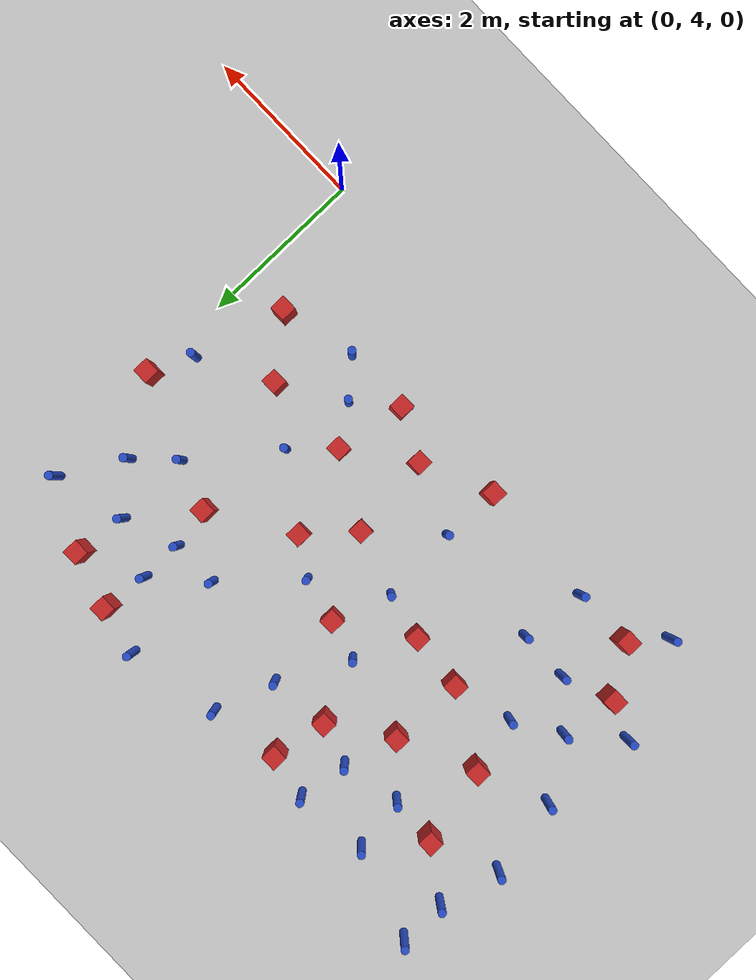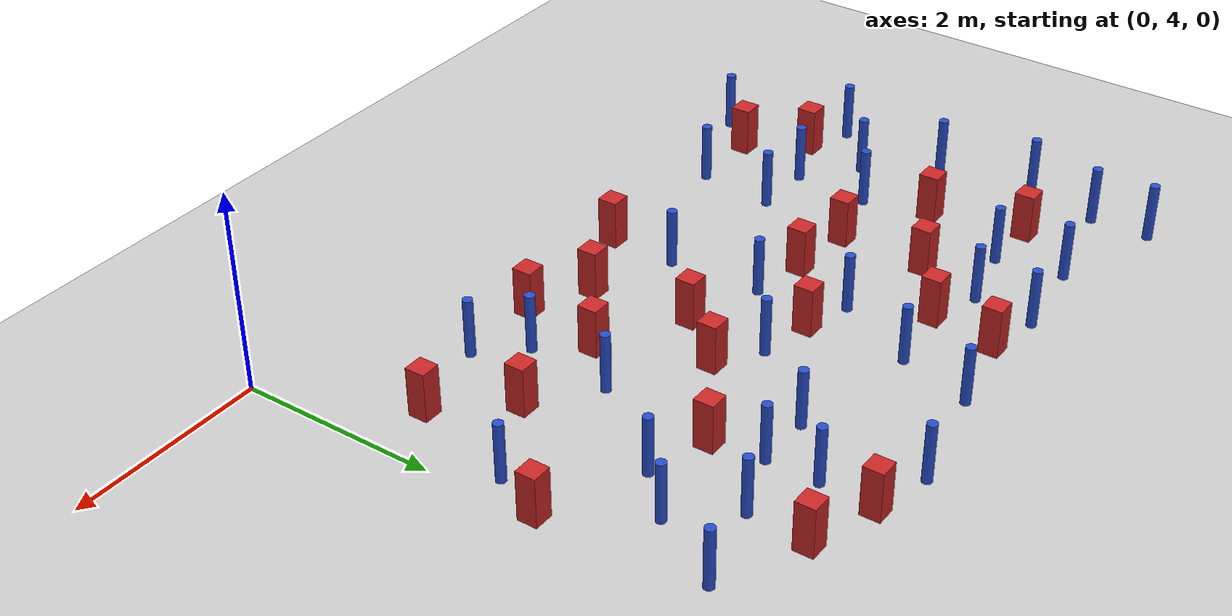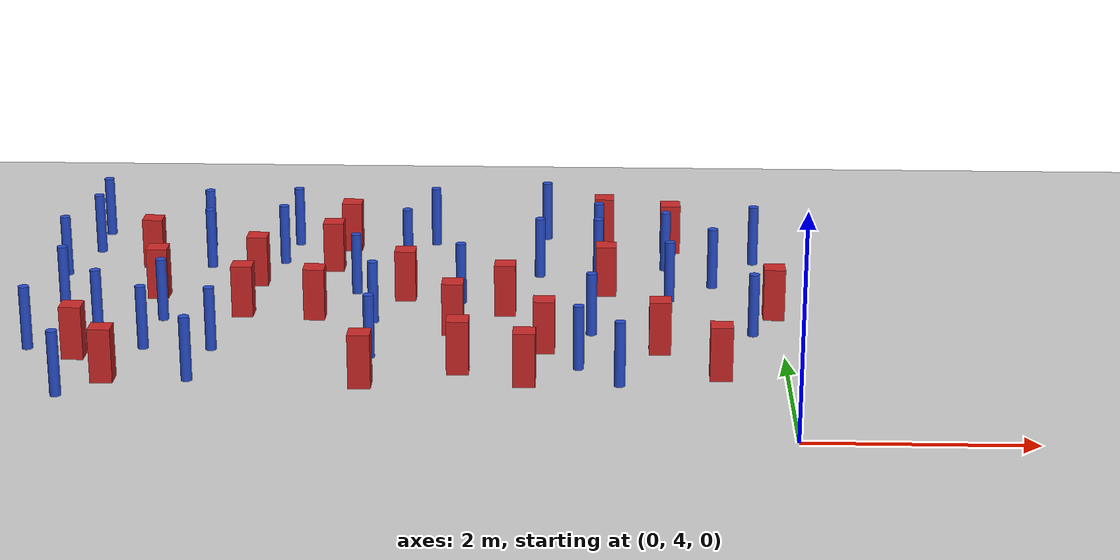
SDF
<sdf version="1.6">
 <world name="default">
  <model name="ground_plane">
   <static>1</static>
   <link name="link">
    <collision name="collision">
     <geometry><plane><normal>0 0 1</normal><size>100 100</size></plane></geometry>
     <surface><friction><ode><mu>100</mu><mu2>50</mu2></ode></friction></surface>
    </collision>
    <visual name="visual">
     <cast_shadows>0</cast_shadows>
     <geometry><plane><normal>0 0 1</normal><size>100 100</size></plane></geometry>
     <material>
      <ambient>1.0 1.0 1.0 1.0</ambient>
      <diffuse>0.8 0.8 0.8 1.0</diffuse>
      <specular>0.01 0.01 0.01 1.000000</specular>
     </material>
    </visual>
   </link>
  </model>
  <model name="square_post_obstacle5">
   <static>true</static>
   <pose>-1.62502940197 7.73699112247 8.22691968438e-08 7.2212513382e-06 -7.54495500217e-07 2.29674213826e-05</pose>
   <link name="link">
    <pose>0 0 0.25 0 -0 0</pose>
    <inertial>
     <mass>100</mass>
     <inertia>
      <ixx>0.166667</ixx>
      <ixy>0</ixy>
      <ixz>0</ixz>
      <iyy>0.166667</iyy>
      <iyz>0</iyz>
      <izz>0.166667</izz>
     </inertia>
    </inertial>
    <collision name="collision"><geometry><box><size>.2 .2 .5</size></box></geometry></collision>
    <visual name="visual">
     <geometry><box><size>.2 .2 .5</size></box></geometry>
     <material>
      <script><name>Gazebo/Red</name><uri>file://media/materials/scripts/gazebo.material</uri></script>
     </material>
    </visual>
   </link>
  </model>
  <model name="pole_obstacle12">
   <static>true</static>
   <pose>-1.70624863904 8.2460111701 2.88873142074e-08 -9.90536690474e-09 4.60219948974e-07 -1.2096599497e-07</pose>
   <link name="link">
    <pose>0 0 0.3 0 -0 0</pose>
    <inertial>
     <mass>1</mass>
     <inertia><ixx>0.145833</ixx><ixy>0</ixy><ixz>0</ixz><iyy>0.145833</iyy><iyz>0</iyz><izz>0.125</izz></inertia>
    </inertial>
    <collision name="collision">
     <geometry><cylinder><radius>0.05</radius><length>.6</length></cylinder></geometry>
    </collision>
    <visual name="visual">
     <geometry><cylinder><radius>0.05</radius><length>.6</length></cylinder></geometry>
     <material>
      <script><name>Gazebo/Blue</name><uri>file://media/materials/scripts/gazebo.material</uri></script>
     </material>
    </visual>
   </link>
  </model>
  <model name="square_post_obstacle24">
   <static>true</static>
   <pose>-5.95785105584 7.53222903011 8.22691968438e-08 7.2212513382e-06 -7.54495500217e-07 2.29674213826e-05</pose>
   <link name="link">
    <pose>0 0 0.25 0 -0 0</pose>
    <inertial>
     <mass>100</mass>
     <inertia>
      <ixx>0.166667</ixx>
      <ixy>0</ixy>
      <ixz>0</ixz>
      <iyy>0.166667</iyy>
      <iyz>0</iyz>
      <izz>0.166667</izz>
     </inertia>
    </inertial>
    <collision name="collision"><geometry><box><size>.2 .2 .5</size></box></geometry></collision>
    <visual name="visual">
     <geometry><box><size>.2 .2 .5</size></box></geometry>
     <material>
      <script><name>Gazebo/Red</name><uri>file://media/materials/scripts/gazebo.material</uri></script>
     </material>
    </visual>
   </link>
  </model>
  <model name="pole_obstacle30">
   <static>true</static>
   <pose>-3.81424817512 6.84928065163 2.88873142074e-08 -9.90536692062e-09 4.60219948937e-07 -1.20965994985e-07</pose>
   <link name="link">
    <pose>0 0 0.3 0 -0 0</pose>
    <inertial>
     <mass>1</mass>
     <inertia><ixx>0.145833</ixx><ixy>0</ixy><ixz>0</ixz><iyy>0.145833</iyy><iyz>0</iyz><izz>0.125</izz></inertia>
    </inertial>
    <collision name="collision">
     <geometry><cylinder><radius>0.05</radius><length>.6</length></cylinder></geometry>
    </collision>
    <visual name="visual">
     <geometry><cylinder><radius>0.05</radius><length>.6</length></cylinder></geometry>
     <material>
      <script><name>Gazebo/Blue</name><uri>file://media/materials/scripts/gazebo.material</uri></script>
     </material>
    </visual>
   </link>
  </model>
  <model name="pole_obstacle34">
   <static>true</static>
   <pose>-3.7639796775 5.90260880079 2.88873142074e-08 -9.90536692062e-09 4.60219948937e-07 -1.20965994985e-07</pose>
   <link name="link">
    <pose>0 0 0.3 0 -0 0</pose>
    <inertial>
     <mass>1</mass>
     <inertia><ixx>0.145833</ixx><ixy>0</ixy><ixz>0</ixz><iyy>0.145833</iyy><iyz>0</iyz><izz>0.125</izz></inertia>
    </inertial>
    <collision name="collision">
     <geometry><cylinder><radius>0.05</radius><length>.6</length></cylinder></geometry>
    </collision>
    <visual name="visual">
     <geometry><cylinder><radius>0.05</radius><length>.6</length></cylinder></geometry>
     <material>
      <script><name>Gazebo/Blue</name><uri>file://media/materials/scripts/gazebo.material</uri></script>
     </material>
    </visual>
   </link>
  </model>
  <model name="pole_obstacle36">
   <static>true</static>
   <pose>-4.86426461495 8.59429978646 2.88873142074e-08 -9.9053668967e-09 4.60219948993e-07 -1.20965994957e-07</pose>
   <link name="link">
    <pose>0 0 0.3 0 -0 0</pose>
    <inertial>
     <mass>1</mass>
     <inertia><ixx>0.145833</ixx><ixy>0</ixy><ixz>0</ixz><iyy>0.145833</iyy><iyz>0</iyz><izz>0.125</izz></inertia>
    </inertial>
    <collision name="collision">
     <geometry><cylinder><radius>0.05</radius><length>.6</length></cylinder></geometry>
    </collision>
    <visual name="visual">
     <geometry><cylinder><radius>0.05</radius><length>.6</length></cylinder></geometry>
     <material>
      <script><name>Gazebo/Blue</name><uri>file://media/materials/scripts/gazebo.material</uri></script>
     </material>
    </visual>
   </link>
  </model>
  <model name="pole_obstacle38">
   <static>true</static>
   <pose>-6.40832418415 4.86727818669 2.88873142074e-08 -9.90536690842e-09 4.60219948965e-07 -1.20965994976e-07</pose>
   <link name="link">
    <pose>0 0 0.3 0 -0 0</pose>
    <inertial>
     <mass>1</mass>
     <inertia><ixx>0.145833</ixx><ixy>0</ixy><ixz>0</ixz><iyy>0.145833</iyy><iyz>0</iyz><izz>0.125</izz></inertia>
    </inertial>
    <collision name="collision">
     <geometry><cylinder><radius>0.05</radius><length>.6</length></cylinder></geometry>
    </collision>
    <visual name="visual">
     <geometry><cylinder><radius>0.05</radius><length>.6</length></cylinder></geometry>
     <material>
      <script><name>Gazebo/Blue</name><uri>file://media/materials/scripts/gazebo.material</uri></script>
     </material>
    </visual>
   </link>
  </model>
  <model name="pole_obstacle39">
   <static>true</static>
   <pose>-1.75640897377 6.57186250032 2.88873142074e-08 -9.90536689852e-09 4.60219948989e-07 -1.2096599496e-07</pose>
   <link name="link">
    <pose>0 0 0.3 0 -0 0</pose>
    <inertial>
     <mass>1</mass>
     <inertia><ixx>0.145833</ixx><ixy>0</ixy><ixz>0</ixz><iyy>0.145833</iyy><iyz>0</iyz><izz>0.125</izz></inertia>
    </inertial>
    <collision name="collision">
     <geometry><cylinder><radius>0.05</radius><length>.6</length></cylinder></geometry>
    </collision>
    <visual name="visual">
     <geometry><cylinder><radius>0.05</radius><length>.6</length></cylinder></geometry>
     <material>
      <script><name>Gazebo/Blue</name><uri>file://media/materials/scripts/gazebo.material</uri></script>
     </material>
    </visual>
   </link>
  </model>
  <model name="pole_obstacle43">
   <static>true</static>
   <pose>-5.32611838451 5.27101270883 2.88873142074e-08 -9.90536690842e-09 4.60219948965e-07 -1.20965994976e-07</pose>
   <link name="link">
    <pose>0 0 0.3 0 -0 0</pose>
    <inertial>
     <mass>1</mass>
     <inertia><ixx>0.145833</ixx><ixy>0</ixy><ixz>0</ixz><iyy>0.145833</iyy><iyz>0</iyz><izz>0.125</izz></inertia>
    </inertial>
    <collision name="collision">
     <geometry><cylinder><radius>0.05</radius><length>.6</length></cylinder></geometry>
    </collision>
    <visual name="visual">
     <geometry><cylinder><radius>0.05</radius><length>.6</length></cylinder></geometry>
     <material>
      <script><name>Gazebo/Blue</name><uri>file://media/materials/scripts/gazebo.material</uri></script>
     </material>
    </visual>
   </link>
  </model>
  <model name="square_post_obstacle47">
   <static>true</static>
   <pose>-1.12757412419 6.13249128294 8.22691968438e-08 7.2212513382e-06 -7.54495500217e-07 2.29674213826e-05</pose>
   <link name="link">
    <pose>0 0 0.25 0 -0 0</pose>
    <inertial>
     <mass>100</mass>
     <inertia>
      <ixx>0.166667</ixx>
      <ixy>0</ixy>
      <ixz>0</ixz>
      <iyy>0.166667</iyy>
      <iyz>0</iyz>
      <izz>0.166667</izz>
     </inertia>
    </inertial>
    <collision name="collision"><geometry><box><size>.2 .2 .5</size></box></geometry></collision>
    <visual name="visual">
     <geometry><box><size>.2 .2 .5</size></box></geometry>
     <material>
      <script><name>Gazebo/Red</name><uri>file://media/materials/scripts/gazebo.material</uri></script>
     </material>
    </visual>
   </link>
  </model>
  <model name="pole_obstacle49">
   <static>true</static>
   <pose>-2.28251560408 8.24530616527 2.88873142074e-08 -9.90536692318e-09 4.6021994893e-07 -1.20965994988e-07</pose>
   <link name="link">
    <pose>0 0 0.3 0 -0 0</pose>
    <inertial>
     <mass>1</mass>
     <inertia><ixx>0.145833</ixx><ixy>0</ixy><ixz>0</ixz><iyy>0.145833</iyy><iyz>0</iyz><izz>0.125</izz></inertia>
    </inertial>
    <collision name="collision">
     <geometry><cylinder><radius>0.05</radius><length>.6</length></cylinder></geometry>
    </collision>
    <visual name="visual">
     <geometry><cylinder><radius>0.05</radius><length>.6</length></cylinder></geometry>
     <material>
      <script><name>Gazebo/Blue</name><uri>file://media/materials/scripts/gazebo.material</uri></script>
     </material>
    </visual>
   </link>
  </model>
  <model name="square_post_obstacle49">
   <static>true</static>
   <pose>-2.93758978744 5.57029905862 8.22691968438e-08 7.2212513382e-06 -7.54495500217e-07 2.29674213826e-05</pose>
   <link name="link">
    <pose>0 0 0.25 0 -0 0</pose>
    <inertial>
     <mass>100</mass>
     <inertia>
      <ixx>0.166667</ixx>
      <ixy>0</ixy>
      <ixz>0</ixz>
      <iyy>0.166667</iyy>
      <iyz>0</iyz>
      <izz>0.166667</izz>
     </inertia>
    </inertial>
    <collision name="collision"><geometry><box><size>.2 .2 .5</size></box></geometry></collision>
    <visual name="visual">
     <geometry><box><size>.2 .2 .5</size></box></geometry>
     <material>
      <script><name>Gazebo/Red</name><uri>file://media/materials/scripts/gazebo.material</uri></script>
     </material>
    </visual>
   </link>
  </model>
  <model name="square_post_obstacle52">
   <static>true</static>
   <pose>-5.06748183629 7.03526219331 8.22691968438e-08 7.22125133819e-06 -7.54495500217e-07 2.29674213826e-05</pose>
   <link name="link">
    <pose>0 0 0.25 0 -0 0</pose>
    <inertial>
     <mass>100</mass>
     <inertia>
      <ixx>0.166667</ixx>
      <ixy>0</ixy>
      <ixz>0</ixz>
      <iyy>0.166667</iyy>
      <iyz>0</iyz>
      <izz>0.166667</izz>
     </inertia>
    </inertial>
    <collision name="collision"><geometry><box><size>.2 .2 .5</size></box></geometry></collision>
    <visual name="visual">
     <geometry><box><size>.2 .2 .5</size></box></geometry>
     <material>
      <script><name>Gazebo/Red</name><uri>file://media/materials/scripts/gazebo.material</uri></script>
     </material>
    </visual>
   </link>
  </model>
  <model name="square_post_obstacle55">
   <static>true</static>
   <pose>-4.34392898501 8.41638645236 8.22691968438e-08 7.22125133819e-06 -7.54495500217e-07 2.29674213826e-05</pose>
   <link name="link">
    <pose>0 0 0.25 0 -0 0</pose>
    <inertial>
     <mass>100</mass>
     <inertia>
      <ixx>0.166667</ixx>
      <ixy>0</ixy>
      <ixz>0</ixz>
      <iyy>0.166667</iyy>
      <iyz>0</iyz>
      <izz>0.166667</izz>
     </inertia>
    </inertial>
    <collision name="collision"><geometry><box><size>.2 .2 .5</size></box></geometry></collision>
    <visual name="visual">
     <geometry><box><size>.2 .2 .5</size></box></geometry>
     <material>
      <script><name>Gazebo/Red</name><uri>file://media/materials/scripts/gazebo.material</uri></script>
     </material>
    </visual>
   </link>
  </model>
  <model name="pole_obstacle57">
   <static>true</static>
   <pose>-1.49419448965 5.25854520074 2.88873142074e-08 -9.90536689852e-09 4.60219948989e-07 -1.2096599496e-07</pose>
   <link name="link">
    <pose>0 0 0.3 0 -0 0</pose>
    <inertial>
     <mass>1</mass>
     <inertia><ixx>0.145833</ixx><ixy>0</ixy><ixz>0</ixz><iyy>0.145833</iyy><iyz>0</iyz><izz>0.125</izz></inertia>
    </inertial>
    <collision name="collision">
     <geometry><cylinder><radius>0.05</radius><length>.6</length></cylinder></geometry>
    </collision>
    <visual name="visual">
     <geometry><cylinder><radius>0.05</radius><length>.6</length></cylinder></geometry>
     <material>
      <script><name>Gazebo/Blue</name><uri>file://media/materials/scripts/gazebo.material</uri></script>
     </material>
    </visual>
   </link>
  </model>
  <model name="square_post_obstacle69">
   <static>true</static>
   <pose>-2.18557994144 6.12579598788 8.22691968438e-08 7.2212513382e-06 -7.54495500217e-07 2.29674213826e-05</pose>
   <link name="link">
    <pose>0 0 0.25 0 -0 0</pose>
    <inertial>
     <mass>100</mass>
     <inertia>
      <ixx>0.166667</ixx>
      <ixy>0</ixy>
      <ixz>0</ixz>
      <iyy>0.166667</iyy>
      <iyz>0</iyz>
      <izz>0.166667</izz>
     </inertia>
    </inertial>
    <collision name="collision"><geometry><box><size>.2 .2 .5</size></box></geometry></collision>
    <visual name="visual">
     <geometry><box><size>.2 .2 .5</size></box></geometry>
     <material>
      <script><name>Gazebo/Red</name><uri>file://media/materials/scripts/gazebo.material</uri></script>
     </material>
    </visual>
   </link>
  </model>
  <model name="pole_obstacle67">
   <static>true</static>
   <pose>-6.79045576454 8.90069616436 2.88873142074e-08 -9.9053668967e-09 4.60219948993e-07 -1.20965994957e-07</pose>
   <link name="link">
    <pose>0 0 0.3 0 -0 0</pose>
    <inertial>
     <mass>1</mass>
     <inertia><ixx>0.145833</ixx><ixy>0</ixy><ixz>0</ixz><iyy>0.145833</iyy><iyz>0</iyz><izz>0.125</izz></inertia>
    </inertial>
    <collision name="collision">
     <geometry><cylinder><radius>0.05</radius><length>.6</length></cylinder></geometry>
    </collision>
    <visual name="visual">
     <geometry><cylinder><radius>0.05</radius><length>.6</length></cylinder></geometry>
     <material>
      <script><name>Gazebo/Blue</name><uri>file://media/materials/scripts/gazebo.material</uri></script>
     </material>
    </visual>
   </link>
  </model>
  <model name="square_post_obstacle74">
   <static>true</static>
   <pose>-0.979781735508 9.10467260252 8.22691968438e-08 7.22125133819e-06 -7.54495500217e-07 2.29674213826e-05</pose>
   <link name="link">
    <pose>0 0 0.25 0 -0 0</pose>
    <inertial>
     <mass>100</mass>
     <inertia>
      <ixx>0.166667</ixx>
      <ixy>0</ixy>
      <ixz>0</ixz>
      <iyy>0.166667</iyy>
      <iyz>0</iyz>
      <izz>0.166667</izz>
     </inertia>
    </inertial>
    <collision name="collision"><geometry><box><size>.2 .2 .5</size></box></geometry></collision>
    <visual name="visual">
     <geometry><box><size>.2 .2 .5</size></box></geometry>
     <material>
      <script><name>Gazebo/Red</name><uri>file://media/materials/scripts/gazebo.material</uri></script>
     </material>
    </visual>
   </link>
  </model>
  <model name="pole_obstacle69">
   <static>true</static>
   <pose>-6.91571051013 6.02828056579 2.88873142074e-08 -9.90536690842e-09 4.60219948965e-07 -1.20965994976e-07</pose>
   <link name="link">
    <pose>0 0 0.3 0 -0 0</pose>
    <inertial>
     <mass>1</mass>
     <inertia><ixx>0.145833</ixx><ixy>0</ixy><ixz>0</ixz><iyy>0.145833</iyy><iyz>0</iyz><izz>0.125</izz></inertia>
    </inertial>
    <collision name="collision">
     <geometry><cylinder><radius>0.05</radius><length>.6</length></cylinder></geometry>
    </collision>
    <visual name="visual">
     <geometry><cylinder><radius>0.05</radius><length>.6</length></cylinder></geometry>
     <material>
      <script><name>Gazebo/Blue</name><uri>file://media/materials/scripts/gazebo.material</uri></script>
     </material>
    </visual>
   </link>
  </model>
  <model name="pole_obstacle70">
   <static>true</static>
   <pose>-0.155486620247 8.70423718212 2.88873142074e-08 -9.90536690775e-09 4.60219948967e-07 -1.20965994977e-07</pose>
   <link name="link">
    <pose>0 0 0.3 0 -0 0</pose>
    <inertial>
     <mass>1</mass>
     <inertia><ixx>0.145833</ixx><ixy>0</ixy><ixz>0</ixz><iyy>0.145833</iyy><iyz>0</iyz><izz>0.125</izz></inertia>
    </inertial>
    <collision name="collision">
     <geometry><cylinder><radius>0.05</radius><length>.6</length></cylinder></geometry>
    </collision>
    <visual name="visual">
     <geometry><cylinder><radius>0.05</radius><length>.6</length></cylinder></geometry>
     <material>
      <script><name>Gazebo/Blue</name><uri>file://media/materials/scripts/gazebo.material</uri></script>
     </material>
    </visual>
   </link>
  </model>
  <model name="pole_obstacle73">
   <static>true</static>
   <pose>-5.80547889419 6.85439992451 2.88873142074e-08 -9.90536690842e-09 4.60219948965e-07 -1.20965994976e-07</pose>
   <link name="link">
    <pose>0 0 0.3 0 -0 0</pose>
    <inertial>
     <mass>1</mass>
     <inertia><ixx>0.145833</ixx><ixy>0</ixy><ixz>0</ixz><iyy>0.145833</iyy><iyz>0</iyz><izz>0.125</izz></inertia>
    </inertial>
    <collision name="collision">
     <geometry><cylinder><radius>0.05</radius><length>.6</length></cylinder></geometry>
    </collision>
    <visual name="visual">
     <geometry><cylinder><radius>0.05</radius><length>.6</length></cylinder></geometry>
     <material>
      <script><name>Gazebo/Blue</name><uri>file://media/materials/scripts/gazebo.material</uri></script>
     </material>
    </visual>
   </link>
  </model>
  <model name="pole_obstacle83">
   <static>true</static>
   <pose>-6.35881131867 6.51752627627 2.88873142074e-08 -9.90536690842e-09 4.60219948965e-07 -1.20965994976e-07</pose>
   <link name="link">
    <pose>0 0 0.3 0 -0 0</pose>
    <inertial>
     <mass>1</mass>
     <inertia><ixx>0.145833</ixx><ixy>0</ixy><ixz>0</ixz><iyy>0.145833</iyy><iyz>0</iyz><izz>0.125</izz></inertia>
    </inertial>
    <collision name="collision">
     <geometry><cylinder><radius>0.05</radius><length>.6</length></cylinder></geometry>
    </collision>
    <visual name="visual">
     <geometry><cylinder><radius>0.05</radius><length>.6</length></cylinder></geometry>
     <material>
      <script><name>Gazebo/Blue</name><uri>file://media/materials/scripts/gazebo.material</uri></script>
     </material>
    </visual>
   </link>
  </model>
  <model name="pole_obstacle84">
   <static>true</static>
   <pose>-5.58310676283 8.44179848741 2.88873142074e-08 -9.9053668967e-09 4.60219948993e-07 -1.20965994957e-07</pose>
   <link name="link">
    <pose>0 0 0.3 0 -0 0</pose>
    <inertial>
     <mass>1</mass>
     <inertia><ixx>0.145833</ixx><ixy>0</ixy><ixz>0</ixz><iyy>0.145833</iyy><iyz>0</iyz><izz>0.125</izz></inertia>
    </inertial>
    <collision name="collision">
     <geometry><cylinder><radius>0.05</radius><length>.6</length></cylinder></geometry>
    </collision>
    <visual name="visual">
     <geometry><cylinder><radius>0.05</radius><length>.6</length></cylinder></geometry>
     <material>
      <script><name>Gazebo/Blue</name><uri>file://media/materials/scripts/gazebo.material</uri></script>
     </material>
    </visual>
   </link>
  </model>
  <model name="pole_obstacle86">
   <static>true</static>
   <pose>-5.23018238261 6.06128517286 2.88873142074e-08 -9.90536690842e-09 4.60219948965e-07 -1.20965994976e-07</pose>
   <link name="link">
    <pose>0 0 0.3 0 -0 0</pose>
    <inertial>
     <mass>1</mass>
     <inertia><ixx>0.145833</ixx><ixy>0</ixy><ixz>0</ixz><iyy>0.145833</iyy><iyz>0</iyz><izz>0.125</izz></inertia>
    </inertial>
    <collision name="collision">
     <geometry><cylinder><radius>0.05</radius><length>.6</length></cylinder></geometry>
    </collision>
    <visual name="visual">
     <geometry><cylinder><radius>0.05</radius><length>.6</length></cylinder></geometry>
     <material>
      <script><name>Gazebo/Blue</name><uri>file://media/materials/scripts/gazebo.material</uri></script>
     </material>
    </visual>
   </link>
  </model>
  <model name="pole_obstacle87">
   <static>true</static>
   <pose>-6.80932460536 7.19962381786 2.88873142074e-08 -9.90536690842e-09 4.60219948965e-07 -1.20965994976e-07</pose>
   <link name="link">
    <pose>0 0 0.3 0 -0 0</pose>
    <inertial>
     <mass>1</mass>
     <inertia><ixx>0.145833</ixx><ixy>0</ixy><ixz>0</ixz><iyy>0.145833</iyy><iyz>0</iyz><izz>0.125</izz></inertia>
    </inertial>
    <collision name="collision">
     <geometry><cylinder><radius>0.05</radius><length>.6</length></cylinder></geometry>
    </collision>
    <visual name="visual">
     <geometry><cylinder><radius>0.05</radius><length>.6</length></cylinder></geometry>
     <material>
      <script><name>Gazebo/Blue</name><uri>file://media/materials/scripts/gazebo.material</uri></script>
     </material>
    </visual>
   </link>
  </model>
  <model name="square_post_obstacle83">
   <static>true</static>
   <pose>-2.33572026707 5.27472438725 8.22691968438e-08 7.2212513382e-06 -7.54495500217e-07 2.29674213826e-05</pose>
   <link name="link">
    <pose>0 0 0.25 0 -0 0</pose>
    <inertial>
     <mass>100</mass>
     <inertia>
      <ixx>0.166667</ixx>
      <ixy>0</ixy>
      <ixz>0</ixz>
      <iyy>0.166667</iyy>
      <iyz>0</iyz>
      <izz>0.166667</izz>
     </inertia>
    </inertial>
    <collision name="collision"><geometry><box><size>.2 .2 .5</size></box></geometry></collision>
    <visual name="visual">
     <geometry><box><size>.2 .2 .5</size></box></geometry>
     <material>
      <script><name>Gazebo/Red</name><uri>file://media/materials/scripts/gazebo.material</uri></script>
     </material>
    </visual>
   </link>
  </model>
  <model name="square_post_obstacle91">
   <static>true</static>
   <pose>-3.55873588446 7.53880070833 8.22691968438e-08 7.2212513382e-06 -7.54495500217e-07 2.29674213826e-05</pose>
   <link name="link">
    <pose>0 0 0.25 0 -0 0</pose>
    <inertial>
     <mass>100</mass>
     <inertia>
      <ixx>0.166667</ixx>
      <ixy>0</ixy>
      <ixz>0</ixz>
      <iyy>0.166667</iyy>
      <iyz>0</iyz>
      <izz>0.166667</izz>
     </inertia>
    </inertial>
    <collision name="collision"><geometry><box><size>.2 .2 .5</size></box></geometry></collision>
    <visual name="visual">
     <geometry><box><size>.2 .2 .5</size></box></geometry>
     <material>
      <script><name>Gazebo/Red</name><uri>file://media/materials/scripts/gazebo.material</uri></script>
     </material>
    </visual>
   </link>
  </model>
  <model name="pole_obstacle104">
   <static>true</static>
   <pose>-0.25578286998 6.59041458651 2.88873142074e-08 -9.90536689618e-09 4.60219948994e-07 -1.20965994956e-07</pose>
   <link name="link">
    <pose>0 0 0.3 0 -0 0</pose>
    <inertial>
     <mass>1</mass>
     <inertia><ixx>0.145833</ixx><ixy>0</ixy><ixz>0</ixz><iyy>0.145833</iyy><iyz>0</iyz><izz>0.125</izz></inertia>
    </inertial>
    <collision name="collision">
     <geometry><cylinder><radius>0.05</radius><length>.6</length></cylinder></geometry>
    </collision>
    <visual name="visual">
     <geometry><cylinder><radius>0.05</radius><length>.6</length></cylinder></geometry>
     <material>
      <script><name>Gazebo/Blue</name><uri>file://media/materials/scripts/gazebo.material</uri></script>
     </material>
    </visual>
   </link>
  </model>
  <model name="square_post_obstacle110">
   <static>true</static>
   <pose>-3.77834327606 5.19790780201 8.22691968438e-08 7.2212513382e-06 -7.54495500217e-07 2.29674213826e-05</pose>
   <link name="link">
    <pose>0 0 0.25 0 -0 0</pose>
    <inertial>
     <mass>100</mass>
     <inertia>
      <ixx>0.166667</ixx>
      <ixy>0</ixy>
      <ixz>0</ixz>
      <iyy>0.166667</iyy>
      <iyz>0</iyz>
      <izz>0.166667</izz>
     </inertia>
    </inertial>
    <collision name="collision"><geometry><box><size>.2 .2 .5</size></box></geometry></collision>
    <visual name="visual">
     <geometry><box><size>.2 .2 .5</size></box></geometry>
     <material>
      <script><name>Gazebo/Red</name><uri>file://media/materials/scripts/gazebo.material</uri></script>
     </material>
    </visual>
   </link>
  </model>
  <model name="pole_obstacle126">
   <static>true</static>
   <pose>-1.7042361575 8.76870233669 2.88873142074e-08 -9.90536690474e-09 4.60219948974e-07 -1.2096599497e-07</pose>
   <link name="link">
    <pose>0 0 0.3 0 -0 0</pose>
    <inertial>
     <mass>1</mass>
     <inertia><ixx>0.145833</ixx><ixy>0</ixy><ixz>0</ixz><iyy>0.145833</iyy><iyz>0</iyz><izz>0.125</izz></inertia>
    </inertial>
    <collision name="collision">
     <geometry><cylinder><radius>0.05</radius><length>.6</length></cylinder></geometry>
    </collision>
    <visual name="visual">
     <geometry><cylinder><radius>0.05</radius><length>.6</length></cylinder></geometry>
     <material>
      <script><name>Gazebo/Blue</name><uri>file://media/materials/scripts/gazebo.material</uri></script>
     </material>
    </visual>
   </link>
  </model>
  <model name="square_post_obstacle113">
   <static>true</static>
   <pose>-2.58140230013 7.13724723484 8.22691968438e-08 7.2212513382e-06 -7.54495500217e-07 2.29674213826e-05</pose>
   <link name="link">
    <pose>0 0 0.25 0 -0 0</pose>
    <inertial>
     <mass>100</mass>
     <inertia>
      <ixx>0.166667</ixx>
      <ixy>0</ixy>
      <ixz>0</ixz>
      <iyy>0.166667</iyy>
      <iyz>0</iyz>
      <izz>0.166667</izz>
     </inertia>
    </inertial>
    <collision name="collision"><geometry><box><size>.2 .2 .5</size></box></geometry></collision>
    <visual name="visual">
     <geometry><box><size>.2 .2 .5</size></box></geometry>
     <material>
      <script><name>Gazebo/Red</name><uri>file://media/materials/scripts/gazebo.material</uri></script>
     </material>
    </visual>
   </link>
  </model>
  <model name="square_post_obstacle117">
   <static>true</static>
   <pose>-3.04484671046 6.59527326223 8.22691968438e-08 7.2212513382e-06 -7.54495500217e-07 2.29674213826e-05</pose>
   <link name="link">
    <pose>0 0 0.25 0 -0 0</pose>
    <inertial>
     <mass>100</mass>
     <inertia>
      <ixx>0.166667</ixx>
      <ixy>0</ixy>
      <ixz>0</ixz>
      <iyy>0.166667</iyy>
      <iyz>0</iyz>
      <izz>0.166667</izz>
     </inertia>
    </inertial>
    <collision name="collision"><geometry><box><size>.2 .2 .5</size></box></geometry></collision>
    <visual name="visual">
     <geometry><box><size>.2 .2 .5</size></box></geometry>
     <material>
      <script><name>Gazebo/Red</name><uri>file://media/materials/scripts/gazebo.material</uri></script>
     </material>
    </visual>
   </link>
  </model>
  <model name="pole_obstacle136">
   <static>true</static>
   <pose>-6.80378918274 9.48934184568 2.88873142074e-08 -9.9053668967e-09 4.60219948993e-07 -1.20965994957e-07</pose>
   <link name="link">
    <pose>0 0 0.3 0 -0 0</pose>
    <inertial>
     <mass>1</mass>
     <inertia><ixx>0.145833</ixx><ixy>0</ixy><ixz>0</ixz><iyy>0.145833</iyy><iyz>0</iyz><izz>0.125</izz></inertia>
    </inertial>
    <collision name="collision">
     <geometry><cylinder><radius>0.05</radius><length>.6</length></cylinder></geometry>
    </collision>
    <visual name="visual">
     <geometry><cylinder><radius>0.05</radius><length>.6</length></cylinder></geometry>
     <material>
      <script><name>Gazebo/Blue</name><uri>file://media/materials/scripts/gazebo.material</uri></script>
     </material>
    </visual>
   </link>
  </model>
  <model name="square_post_obstacle127">
   <static>true</static>
   <pose>-6.06811559248 5.26319874648 8.22691968438e-08 7.2212513382e-06 -7.54495500217e-07 2.29674213826e-05</pose>
   <link name="link">
    <pose>0 0 0.25 0 -0 0</pose>
    <inertial>
     <mass>100</mass>
     <inertia>
      <ixx>0.166667</ixx>
      <ixy>0</ixy>
      <ixz>0</ixz>
      <iyy>0.166667</iyy>
      <iyz>0</iyz>
      <izz>0.166667</izz>
     </inertia>
    </inertial>
    <collision name="collision"><geometry><box><size>.2 .2 .5</size></box></geometry></collision>
    <visual name="visual">
     <geometry><box><size>.2 .2 .5</size></box></geometry>
     <material>
      <script><name>Gazebo/Red</name><uri>file://media/materials/scripts/gazebo.material</uri></script>
     </material>
    </visual>
   </link>
  </model>
  <model name="pole_obstacle144">
   <static>true</static>
   <pose>-0.588437872393 7.95828518245 2.88873142074e-08 -9.90536690208e-09 4.6021994898e-07 -1.20965994966e-07</pose>
   <link name="link">
    <pose>0 0 0.3 0 -0 0</pose>
    <inertial>
     <mass>1</mass>
     <inertia><ixx>0.145833</ixx><ixy>0</ixy><ixz>0</ixz><iyy>0.145833</iyy><iyz>0</iyz><izz>0.125</izz></inertia>
    </inertial>
    <collision name="collision">
     <geometry><cylinder><radius>0.05</radius><length>.6</length></cylinder></geometry>
    </collision>
    <visual name="visual">
     <geometry><cylinder><radius>0.05</radius><length>.6</length></cylinder></geometry>
     <material>
      <script><name>Gazebo/Blue</name><uri>file://media/materials/scripts/gazebo.material</uri></script>
     </material>
    </visual>
   </link>
  </model>
  <model name="square_post_obstacle134">
   <static>true</static>
   <pose>-4.22594240645 9.08469160012 8.22691968438e-08 7.22125133819e-06 -7.54495500217e-07 2.29674213826e-05</pose>
   <link name="link">
    <pose>0 0 0.25 0 -0 0</pose>
    <inertial>
     <mass>100</mass>
     <inertia>
      <ixx>0.166667</ixx>
      <ixy>0</ixy>
      <ixz>0</ixz>
      <iyy>0.166667</iyy>
      <iyz>0</iyz>
      <izz>0.166667</izz>
     </inertia>
    </inertial>
    <collision name="collision"><geometry><box><size>.2 .2 .5</size></box></geometry></collision>
    <visual name="visual">
     <geometry><box><size>.2 .2 .5</size></box></geometry>
     <material>
      <script><name>Gazebo/Red</name><uri>file://media/materials/scripts/gazebo.material</uri></script>
     </material>
    </visual>
   </link>
  </model>
  <model name="pole_obstacle147">
   <static>true</static>
   <pose>-5.68861940543 9.10718626682 2.88873142074e-08 -9.9053668967e-09 4.60219948993e-07 -1.20965994957e-07</pose>
   <link name="link">
    <pose>0 0 0.3 0 -0 0</pose>
    <inertial>
     <mass>1</mass>
     <inertia><ixx>0.145833</ixx><ixy>0</ixy><ixz>0</ixz><iyy>0.145833</iyy><iyz>0</iyz><izz>0.125</izz></inertia>
    </inertial>
    <collision name="collision">
     <geometry><cylinder><radius>0.05</radius><length>.6</length></cylinder></geometry>
    </collision>
    <visual name="visual">
     <geometry><cylinder><radius>0.05</radius><length>.6</length></cylinder></geometry>
     <material>
      <script><name>Gazebo/Blue</name><uri>file://media/materials/scripts/gazebo.material</uri></script>
     </material>
    </visual>
   </link>
  </model>
  <model name="square_post_obstacle138">
   <static>true</static>
   <pose>-0.0381271904532 7.10191058215 8.22691968438e-08 7.2212513382e-06 -7.54495500217e-07 2.29674213826e-05</pose>
   <link name="link">
    <pose>0 0 0.25 0 -0 0</pose>
    <inertial>
     <mass>100</mass>
     <inertia>
      <ixx>0.166667</ixx>
      <ixy>0</ixy>
      <ixz>0</ixz>
      <iyy>0.166667</iyy>
      <iyz>0</iyz>
      <izz>0.166667</izz>
     </inertia>
    </inertial>
    <collision name="collision"><geometry><box><size>.2 .2 .5</size></box></geometry></collision>
    <visual name="visual">
     <geometry><box><size>.2 .2 .5</size></box></geometry>
     <material>
      <script><name>Gazebo/Red</name><uri>file://media/materials/scripts/gazebo.material</uri></script>
     </material>
    </visual>
   </link>
  </model>
  <model name="square_post_obstacle144">
   <static>true</static>
   <pose>-5.04337990788 7.93808713999 8.22691968438e-08 7.22125133819e-06 -7.54495500217e-07 2.29674213826e-05</pose>
   <link name="link">
    <pose>0 0 0.25 0 -0 0</pose>
    <inertial>
     <mass>100</mass>
     <inertia>
      <ixx>0.166667</ixx>
      <ixy>0</ixy>
      <ixz>0</ixz>
      <iyy>0.166667</iyy>
      <iyz>0</iyz>
      <izz>0.166667</izz>
     </inertia>
    </inertial>
    <collision name="collision"><geometry><box><size>.2 .2 .5</size></box></geometry></collision>
    <visual name="visual">
     <geometry><box><size>.2 .2 .5</size></box></geometry>
     <material>
      <script><name>Gazebo/Red</name><uri>file://media/materials/scripts/gazebo.material</uri></script>
     </material>
    </visual>
   </link>
  </model>
  <model name="square_post_obstacle154">
   <static>true</static>
   <pose>-0.596341453961 5.48472228614 8.22691968438e-08 7.2212513382e-06 -7.54495500217e-07 2.29674213826e-05</pose>
   <link name="link">
    <pose>0 0 0.25 0 -0 0</pose>
    <inertial>
     <mass>100</mass>
     <inertia>
      <ixx>0.166667</ixx>
      <ixy>0</ixy>
      <ixz>0</ixz>
      <iyy>0.166667</iyy>
      <iyz>0</iyz>
      <izz>0.166667</izz>
     </inertia>
    </inertial>
    <collision name="collision"><geometry><box><size>.2 .2 .5</size></box></geometry></collision>
    <visual name="visual">
     <geometry><box><size>.2 .2 .5</size></box></geometry>
     <material>
      <script><name>Gazebo/Red</name><uri>file://media/materials/scripts/gazebo.material</uri></script>
     </material>
    </visual>
   </link>
  </model>
  <model name="pole_obstacle163">
   <static>true</static>
   <pose>-1.0397296838 8.48546922404 2.88873142074e-08 -9.90536690309e-09 4.60219948978e-07 -1.20965994968e-07</pose>
   <link name="link">
    <pose>0 0 0.3 0 -0 0</pose>
    <inertial>
     <mass>1</mass>
     <inertia><ixx>0.145833</ixx><ixy>0</ixy><ixz>0</ixz><iyy>0.145833</iyy><iyz>0</iyz><izz>0.125</izz></inertia>
    </inertial>
    <collision name="collision">
     <geometry><cylinder><radius>0.05</radius><length>.6</length></cylinder></geometry>
    </collision>
    <visual name="visual">
     <geometry><cylinder><radius>0.05</radius><length>.6</length></cylinder></geometry>
     <material>
      <script><name>Gazebo/Blue</name><uri>file://media/materials/scripts/gazebo.material</uri></script>
     </material>
    </visual>
   </link>
  </model>
  <model name="pole_obstacle164">
   <static>true</static>
   <pose>-4.78495729785 9.20547789318 2.88873142074e-08 -9.9053668967e-09 4.60219948993e-07 -1.20965994957e-07</pose>
   <link name="link">
    <pose>0 0 0.3 0 -0 0</pose>
    <inertial>
     <mass>1</mass>
     <inertia><ixx>0.145833</ixx><ixy>0</ixy><ixz>0</ixz><iyy>0.145833</iyy><iyz>0</iyz><izz>0.125</izz></inertia>
    </inertial>
    <collision name="collision">
     <geometry><cylinder><radius>0.05</radius><length>.6</length></cylinder></geometry>
    </collision>
    <visual name="visual">
     <geometry><cylinder><radius>0.05</radius><length>.6</length></cylinder></geometry>
     <material>
      <script><name>Gazebo/Blue</name><uri>file://media/materials/scripts/gazebo.material</uri></script>
     </material>
    </visual>
   </link>
  </model>
  <model name="pole_obstacle165">
   <static>true</static>
   <pose>-3.6158542762 8.51218664773 2.88873142074e-08 -9.9053668994e-09 4.60219948987e-07 -1.20965994963e-07</pose>
   <link name="link">
    <pose>0 0 0.3 0 -0 0</pose>
    <inertial>
     <mass>1</mass>
     <inertia><ixx>0.145833</ixx><ixy>0</ixy><ixz>0</ixz><iyy>0.145833</iyy><iyz>0</iyz><izz>0.125</izz></inertia>
    </inertial>
    <collision name="collision">
     <geometry><cylinder><radius>0.05</radius><length>.6</length></cylinder></geometry>
    </collision>
    <visual name="visual">
     <geometry><cylinder><radius>0.05</radius><length>.6</length></cylinder></geometry>
     <material>
      <script><name>Gazebo/Blue</name><uri>file://media/materials/scripts/gazebo.material</uri></script>
     </material>
    </visual>
   </link>
  </model>
  <model name="pole_obstacle172">
   <static>true</static>
   <pose>-3.37856360127 9.24977876655 2.88873142074e-08 -9.9053668994e-09 4.60219948987e-07 -1.20965994963e-07</pose>
   <link name="link">
    <pose>0 0 0.3 0 -0 0</pose>
    <inertial>
     <mass>1</mass>
     <inertia><ixx>0.145833</ixx><ixy>0</ixy><ixz>0</ixz><iyy>0.145833</iyy><iyz>0</iyz><izz>0.125</izz></inertia>
    </inertial>
    <collision name="collision">
     <geometry><cylinder><radius>0.05</radius><length>.6</length></cylinder></geometry>
    </collision>
    <visual name="visual">
     <geometry><cylinder><radius>0.05</radius><length>.6</length></cylinder></geometry>
     <material>
      <script><name>Gazebo/Blue</name><uri>file://media/materials/scripts/gazebo.material</uri></script>
     </material>
    </visual>
   </link>
  </model>
  <model name="pole_obstacle175">
   <static>true</static>
   <pose>-6.98429409513 8.15564640734 2.88873142074e-08 -9.9053668967e-09 4.60219948993e-07 -1.20965994957e-07</pose>
   <link name="link">
    <pose>0 0 0.3 0 -0 0</pose>
    <inertial>
     <mass>1</mass>
     <inertia><ixx>0.145833</ixx><ixy>0</ixy><ixz>0</ixz><iyy>0.145833</iyy><iyz>0</iyz><izz>0.125</izz></inertia>
    </inertial>
    <collision name="collision">
     <geometry><cylinder><radius>0.05</radius><length>.6</length></cylinder></geometry>
    </collision>
    <visual name="visual">
     <geometry><cylinder><radius>0.05</radius><length>.6</length></cylinder></geometry>
     <material>
      <script><name>Gazebo/Blue</name><uri>file://media/materials/scripts/gazebo.material</uri></script>
     </material>
    </visual>
   </link>
  </model>
  <model name="square_post_obstacle180">
   <static>true</static>
   <pose>-1.65258245873 9.32547857643 8.22691968438e-08 7.22125133819e-06 -7.54495500217e-07 2.29674213826e-05</pose>
   <link name="link">
    <pose>0 0 0.25 0 -0 0</pose>
    <inertial>
     <mass>100</mass>
     <inertia>
      <ixx>0.166667</ixx>
      <ixy>0</ixy>
      <ixz>0</ixz>
      <iyy>0.166667</iyy>
      <iyz>0</iyz>
      <izz>0.166667</izz>
     </inertia>
    </inertial>
    <collision name="collision"><geometry><box><size>.2 .2 .5</size></box></geometry></collision>
    <visual name="visual">
     <geometry><box><size>.2 .2 .5</size></box></geometry>
     <material>
      <script><name>Gazebo/Red</name><uri>file://media/materials/scripts/gazebo.material</uri></script>
     </material>
    </visual>
   </link>
  </model>
  <model name="square_post_obstacle197">
   <static>true</static>
   <pose>-4.37776279145 6.97189387213 8.22691968438e-08 7.22125133819e-06 -7.54495500217e-07 2.29674213826e-05</pose>
   <link name="link">
    <pose>0 0 0.25 0 -0 0</pose>
    <inertial>
     <mass>100</mass>
     <inertia>
      <ixx>0.166667</ixx>
      <ixy>0</ixy>
      <ixz>0</ixz>
      <iyy>0.166667</iyy>
      <iyz>0</iyz>
      <izz>0.166667</izz>
     </inertia>
    </inertial>
    <collision name="collision"><geometry><box><size>.2 .2 .5</size></box></geometry></collision>
    <visual name="visual">
     <geometry><box><size>.2 .2 .5</size></box></geometry>
     <material>
      <script><name>Gazebo/Red</name><uri>file://media/materials/scripts/gazebo.material</uri></script>
     </material>
    </visual>
   </link>
  </model>
  <model name="pole_obstacle194">
   <static>true</static>
   <pose>-2.24223135994 9.47850095174 2.88873142074e-08 -9.90536692318e-09 4.6021994893e-07 -1.20965994988e-07</pose>
   <link name="link">
    <pose>0 0 0.3 0 -0 0</pose>
    <inertial>
     <mass>1</mass>
     <inertia><ixx>0.145833</ixx><ixy>0</ixy><ixz>0</ixz><iyy>0.145833</iyy><iyz>0</iyz><izz>0.125</izz></inertia>
    </inertial>
    <collision name="collision">
     <geometry><cylinder><radius>0.05</radius><length>.6</length></cylinder></geometry>
    </collision>
    <visual name="visual">
     <geometry><cylinder><radius>0.05</radius><length>.6</length></cylinder></geometry>
     <material>
      <script><name>Gazebo/Blue</name><uri>file://media/materials/scripts/gazebo.material</uri></script>
     </material>
    </visual>
   </link>
  </model>
  <model name="pole_obstacle200">
   <static>true</static>
   <pose>-1.86329647415 5.66664589969 2.88873142074e-08 -9.90536689852e-09 4.60219948989e-07 -1.2096599496e-07</pose>
   <link name="link">
    <pose>0 0 0.3 0 -0 0</pose>
    <inertial>
     <mass>1</mass>
     <inertia><ixx>0.145833</ixx><ixy>0</ixy><ixz>0</ixz><iyy>0.145833</iyy><iyz>0</iyz><izz>0.125</izz></inertia>
    </inertial>
    <collision name="collision">
     <geometry><cylinder><radius>0.05</radius><length>.6</length></cylinder></geometry>
    </collision>
    <visual name="visual">
     <geometry><cylinder><radius>0.05</radius><length>.6</length></cylinder></geometry>
     <material>
      <script><name>Gazebo/Blue</name><uri>file://media/materials/scripts/gazebo.material</uri></script>
     </material>
    </visual>
   </link>
  </model>
  <model name="pole_obstacle201">
   <static>true</static>
   <pose>-3.01698612458 7.42375905441 2.88873142074e-08 -9.90536689859e-09 4.60219948989e-07 -1.20965994961e-07</pose>
   <link name="link">
    <pose>0 0 0.3 0 -0 0</pose>
    <inertial>
     <mass>1</mass>
     <inertia><ixx>0.145833</ixx><ixy>0</ixy><ixz>0</ixz><iyy>0.145833</iyy><iyz>0</iyz><izz>0.125</izz></inertia>
    </inertial>
    <collision name="collision">
     <geometry><cylinder><radius>0.05</radius><length>.6</length></cylinder></geometry>
    </collision>
    <visual name="visual">
     <geometry><cylinder><radius>0.05</radius><length>.6</length></cylinder></geometry>
     <material>
      <script><name>Gazebo/Blue</name><uri>file://media/materials/scripts/gazebo.material</uri></script>
     </material>
    </visual>
   </link>
  </model>
  <model name="pole_obstacle208">
   <static>true</static>
   <pose>-1.01591137816 7.5370594157 2.88873142074e-08 -9.90536689792e-09 4.6021994899e-07 -1.2096599496e-07</pose>
   <link name="link">
    <pose>0 0 0.3 0 -0 0</pose>
    <inertial>
     <mass>1</mass>
     <inertia><ixx>0.145833</ixx><ixy>0</ixy><ixz>0</ixz><iyy>0.145833</iyy><iyz>0</iyz><izz>0.125</izz></inertia>
    </inertial>
    <collision name="collision">
     <geometry><cylinder><radius>0.05</radius><length>.6</length></cylinder></geometry>
    </collision>
    <visual name="visual">
     <geometry><cylinder><radius>0.05</radius><length>.6</length></cylinder></geometry>
     <material>
      <script><name>Gazebo/Blue</name><uri>file://media/materials/scripts/gazebo.material</uri></script>
     </material>
    </visual>
   </link>
  </model>
  <model name="pole_obstacle213">
   <static>true</static>
   <pose>-5.85745352072 6.07212236346 2.88873142074e-08 -9.90536690842e-09 4.60219948965e-07 -1.20965994976e-07</pose>
   <link name="link">
    <pose>0 0 0.3 0 -0 0</pose>
    <inertial>
     <mass>1</mass>
     <inertia><ixx>0.145833</ixx><ixy>0</ixy><ixz>0</ixz><iyy>0.145833</iyy><iyz>0</iyz><izz>0.125</izz></inertia>
    </inertial>
    <collision name="collision">
     <geometry><cylinder><radius>0.05</radius><length>.6</length></cylinder></geometry>
    </collision>
    <visual name="visual">
     <geometry><cylinder><radius>0.05</radius><length>.6</length></cylinder></geometry>
     <material>
      <script><name>Gazebo/Blue</name><uri>file://media/materials/scripts/gazebo.material</uri></script>
     </material>
    </visual>
   </link>
  </model>
  <model name="pole_obstacle214">
   <static>true</static>
   <pose>-4.04820862025 7.68113480658 2.88873142074e-08 -9.90536691069e-09 4.6021994896e-07 -1.20965994979e-07</pose>
   <link name="link">
    <pose>0 0 0.3 0 -0 0</pose>
    <inertial>
     <mass>1</mass>
     <inertia><ixx>0.145833</ixx><ixy>0</ixy><ixz>0</ixz><iyy>0.145833</iyy><iyz>0</iyz><izz>0.125</izz></inertia>
    </inertial>
    <collision name="collision">
     <geometry><cylinder><radius>0.05</radius><length>.6</length></cylinder></geometry>
    </collision>
    <visual name="visual">
     <geometry><cylinder><radius>0.05</radius><length>.6</length></cylinder></geometry>
     <material>
      <script><name>Gazebo/Blue</name><uri>file://media/materials/scripts/gazebo.material</uri></script>
     </material>
    </visual>
   </link>
  </model>
  <model name="square_post_obstacle211">
   <static>true</static>
   <pose>-6.44469265214 5.84075802327 8.22691968438e-08 7.2212513382e-06 -7.54495500217e-07 2.29674213826e-05</pose>
   <link name="link">
    <pose>0 0 0.25 0 -0 0</pose>
    <inertial>
     <mass>100</mass>
     <inertia>
      <ixx>0.166667</ixx>
      <ixy>0</ixy>
      <ixz>0</ixz>
      <iyy>0.166667</iyy>
      <iyz>0</iyz>
      <izz>0.166667</izz>
     </inertia>
    </inertial>
    <collision name="collision"><geometry><box><size>.2 .2 .5</size></box></geometry></collision>
    <visual name="visual">
     <geometry><box><size>.2 .2 .5</size></box></geometry>
     <material>
      <script><name>Gazebo/Red</name><uri>file://media/materials/scripts/gazebo.material</uri></script>
     </material>
    </visual>
   </link>
  </model>
  <model name="square_post_obstacle213">
   <static>true</static>
   <pose>-6.16435560377 8.46915666611 8.22691968438e-08 7.22125133819e-06 -7.54495500217e-07 2.29674213826e-05</pose>
   <link name="link">
    <pose>0 0 0.25 0 -0 0</pose>
    <inertial>
     <mass>100</mass>
     <inertia>
      <ixx>0.166667</ixx>
      <ixy>0</ixy>
      <ixz>0</ixz>
      <iyy>0.166667</iyy>
      <iyz>0</iyz>
      <izz>0.166667</izz>
     </inertia>
    </inertial>
    <collision name="collision"><geometry><box><size>.2 .2 .5</size></box></geometry></collision>
    <visual name="visual">
     <geometry><box><size>.2 .2 .5</size></box></geometry>
     <material>
      <script><name>Gazebo/Red</name><uri>file://media/materials/scripts/gazebo.material</uri></script>
     </material>
    </visual>
   </link>
  </model>
 </world>
</sdf>
